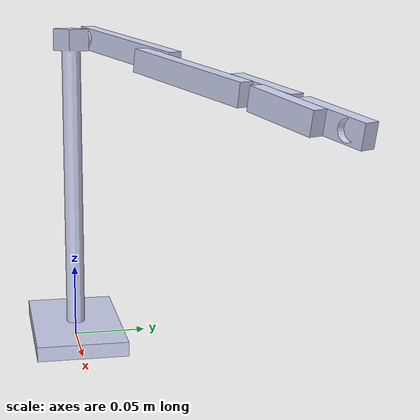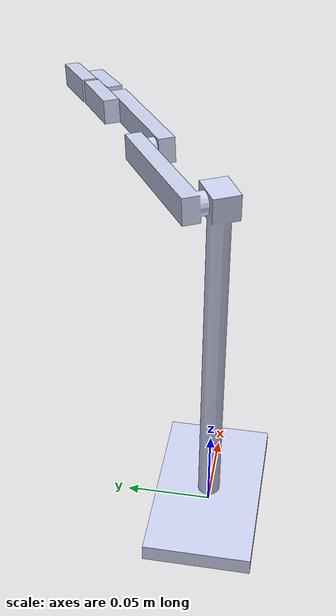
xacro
<?xml version="1.0"?>
<robot xmlns:xacro="http://www.ros.org/wiki/xacro" name="urdf">
    <xacro:arg name="initial_positions_file" default="initial_positions.yaml" />

    <!-- Import urdf urdf file -->
    <xacro:include filename="$(find urdf_sim_6dof)/urdf/urdf.urdf" />

    <!-- Import control_xacro -->
    <xacro:include filename="urdf.ros2_control.xacro" />

    <xacro:urdf_ros2_control name="FakeSystem" initial_positions_file="$(arg initial_positions_file)"/>

</robot>

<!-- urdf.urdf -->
<robot
  name="urdf">
  <link name="world" />
  <joint name="world_to_base" type="fixed">
    <parent link="world" />
    <child link="base_link" />
    <origin xyz="0 0 0" rpy="0 0 0" />
  </joint>
  <link
    name="base_link">
    <inertial>
      <origin
        xyz="7.39464030692487E-37 0.00497518035395604 -1.58261138875238E-18"
        rpy="0 0 0" />
      <mass
        value="0.0668483997410034" />
      <inertia
        ixx="2.2462895846101E-05"
        ixy="-1.98954832894814E-40"
        ixz="6.57847844531489E-21"
        iyy="8.77348785237808E-05"
        iyz="1.53787731656788E-24"
        izz="6.63860403141521E-05" />
    </inertial>
    <visual>
      <origin
        xyz="0 0 0"
        rpy="0 0 0" />
      <geometry>
        <mesh
          filename="package://urdf_sim_6dof/meshes/base_link.STL" />
      </geometry>
      <material
        name="">
        <color
          rgba="0.792156862745098 0.819607843137255 0.933333333333333 1" />
      </material>
    </visual>
    <collision>
      <origin
        xyz="0 0 0"
        rpy="0 0 0" />
      <geometry>
        <mesh
          filename="package://urdf_sim_6dof/meshes/base_link.STL" />
      </geometry>
    </collision>
  </link>
  <link
    name="l1">
    <inertial>
      <origin
        xyz="-4.47233396150271E-19 0.114469851476113 0.000115729332966564"
        rpy="0 0 0" />
      <mass
        value="0.030677018968127" />
      <inertia
        ixx="0.000130209033482256"
        ixy="2.38228016415272E-22"
        ixz="1.35525271560688E-20"
        iyy="7.97058979167308E-07"
        iyz="-3.31045646879452E-07"
        izz="0.000130289941570842" />
    </inertial>
    <visual>
      <origin
        xyz="0 0 0"
        rpy="0 0 0" />
      <geometry>
        <mesh
          filename="package://urdf_sim_6dof/meshes/l1.STL" />
      </geometry>
      <material
        name="">
        <color
          rgba="0.792156862745098 0.819607843137255 0.933333333333333 1" />
      </material>
    </visual>
    <collision>
      <origin
        xyz="0 0 0"
        rpy="0 0 0" />
      <geometry>
        <mesh
          filename="package://urdf_sim_6dof/meshes/l1.STL" />
      </geometry>
    </collision>
  </link>
  <joint
    name="base-l1"
    type="continuous">
    <origin
      xyz="0 0 0.005"
      rpy="1.5708 0 0.4874" />
    <parent
      link="base_link" />
    <child
      link="l1" />
    <axis
      xyz="0 1 0" />
  </joint>
  <link
    name="l2">
    <inertial>
      <origin
        xyz="0.0375252841082667 0 -0.0171079946749473"
        rpy="0 0 0" />
      <mass
        value="0.0156636614480709" />
      <inertia
        ixx="5.42911281558323E-07"
        ixy="1.96538113542599E-21"
        ixz="5.75186236513979E-07"
        iyy="1.36310672485375E-05"
        iyz="0"
        izz="1.36646758150697E-05" />
    </inertial>
    <visual>
      <origin
        xyz="0 0 0"
        rpy="0 0 0" />
      <geometry>
        <mesh
          filename="package://urdf_sim_6dof/meshes/l2.STL" />
      </geometry>
      <material
        name="">
        <color
          rgba="0.792156862745098 0.819607843137255 0.933333333333333 1" />
      </material>
    </visual>
    <collision>
      <origin
        xyz="0 0 0"
        rpy="0 0 0" />
      <geometry>
        <mesh
          filename="package://urdf_sim_6dof/meshes/l2.STL" />
      </geometry>
    </collision>
  </link>
  <joint
    name="l1-l2"
    type="continuous">
    <origin
      xyz="0 0.20772 0"
      rpy="0 0 -0.1298" />
    <parent
      link="l1" />
    <child
      link="l2" />
    <axis
      xyz="0 0 1" />
  </joint>
  <link
    name="l3">
    <inertial>
      <origin
        xyz="0.0375252841082671 1.38777878078145E-16 0.0035909270505925"
        rpy="0 0 0" />
      <mass
        value="0.0156636614480709" />
      <inertia
        ixx="5.42911281558326E-07"
        ixy="-4.24839962607235E-21"
        ixz="5.75186236513974E-07"
        iyy="1.36310672485375E-05"
        iyz="1.05879118406788E-22"
        izz="1.36646758150697E-05" />
    </inertial>
    <visual>
      <origin
        xyz="0 0 0"
        rpy="0 0 0" />
      <geometry>
        <mesh
          filename="package://urdf_sim_6dof/meshes/l3.STL" />
      </geometry>
      <material
        name="">
        <color
          rgba="0.792156862745098 0.819607843137255 0.933333333333333 1" />
      </material>
    </visual>
    <collision>
      <origin
        xyz="0 0 0"
        rpy="0 0 0" />
      <geometry>
        <mesh
          filename="package://urdf_sim_6dof/meshes/l3.STL" />
      </geometry>
    </collision>
  </link>
  <joint
    name="l2-l3"
    type="continuous">
    <origin
      xyz="0.083998 0 0"
      rpy="3.1416 0 -0.009783" />
    <parent
      link="l2" />
    <child
      link="l3" />
    <axis
      xyz="0 0 1" />
  </joint>
  <link
    name="l4">
    <inertial>
      <origin
        xyz="0.011900648780722 5.27355936696949E-16 -0.0124070198973897"
        rpy="0 0 0" />
      <mass
        value="0.00749999999999999" />
      <inertia
        ixx="2.3483991734469E-07"
        ixy="4.6859781701129E-22"
        ixz="8.51956560055316E-08"
        iyy="1.63279009857261E-06"
        iyz="5.9557004103818E-23"
        izz="1.67920018122792E-06" />
    </inertial>
    <visual>
      <origin
        xyz="0 0 0"
        rpy="0 0 0" />
      <geometry>
        <mesh
          filename="package://urdf_sim_6dof/meshes/l4.STL" />
      </geometry>
      <material
        name="">
        <color
          rgba="0.792156862745098 0.819607843137255 0.933333333333333 1" />
      </material>
    </visual>
    <collision>
      <origin
        xyz="0 0 0"
        rpy="0 0 0" />
      <geometry>
        <mesh
          filename="package://urdf_sim_6dof/meshes/l4.STL" />
      </geometry>
    </collision>
  </link>
  <joint
    name="l3-l4"
    type="continuous">
    <origin
      xyz="0.083998 0 0"
      rpy="3.1416 0 0.019524" />
    <parent
      link="l3" />
    <child
      link="l4" />
    <axis
      xyz="0 0 1" />
  </joint>
  <link
    name="l5">
    <inertial>
      <origin
        xyz="0.0119006487807222 -3.60822483003176E-16 0.00329190182814997"
        rpy="0 0 0" />
      <mass
        value="0.00750000000000001" />
      <inertia
        ixx="2.34839917344691E-07"
        ixy="5.39321759384574E-22"
        ixz="8.51956560055317E-08"
        iyy="1.63279009857262E-06"
        iyz="3.97046694025453E-23"
        izz="1.67920018122793E-06" />
    </inertial>
    <visual>
      <origin
        xyz="0 0 0"
        rpy="0 0 0" />
      <geometry>
        <mesh
          filename="package://urdf_sim_6dof/meshes/l5.STL" />
      </geometry>
      <material
        name="">
        <color
          rgba="0.792156862745098 0.819607843137255 0.933333333333333 1" />
      </material>
    </visual>
    <collision>
      <origin
        xyz="0 0 0"
        rpy="0 0 0" />
      <geometry>
        <mesh
          filename="package://urdf_sim_6dof/meshes/l5.STL" />
      </geometry>
    </collision>
  </link>
  <joint
    name="l4-l5"
    type="continuous">
    <origin
      xyz="0.027548 0 0"
      rpy="-3.1416 0 -0.026883" />
    <parent
      link="l4" />
    <child
      link="l5" />
    <axis
      xyz="0 0 1" />
  </joint>
  <link
    name="l6">
    <inertial>
      <origin
        xyz="0.0119006487807223 4.16333634234434E-16 -0.0124070198973874"
        rpy="0 0 0" />
      <mass
        value="0.0075" />
      <inertia
        ixx="2.34839917344691E-07"
        ixy="-1.46514365998455E-21"
        ixz="8.51956560055324E-08"
        iyy="1.63279009857262E-06"
        iyz="5.29395592033938E-23"
        izz="1.67920018122793E-06" />
    </inertial>
    <visual>
      <origin
        xyz="0 0 0"
        rpy="0 0 0" />
      <geometry>
        <mesh
          filename="package://urdf_sim_6dof/meshes/l6.STL" />
      </geometry>
      <material
        name="">
        <color
          rgba="0.792156862745098 0.819607843137255 0.933333333333333 1" />
      </material>
    </visual>
    <collision>
      <origin
        xyz="0 0 0"
        rpy="0 0 0" />
      <geometry>
        <mesh
          filename="package://urdf_sim_6dof/meshes/l6.STL" />
      </geometry>
    </collision>
  </link>
  <joint
    name="l5-l6"
    type="continuous">
    <origin
      xyz="0.027548 0 0"
      rpy="-3.1416 0 -0.0078705" />
    <parent
      link="l5" />
    <child
      link="l6" />
    <axis
      xyz="0 0 1" />
  </joint>
</robot>
